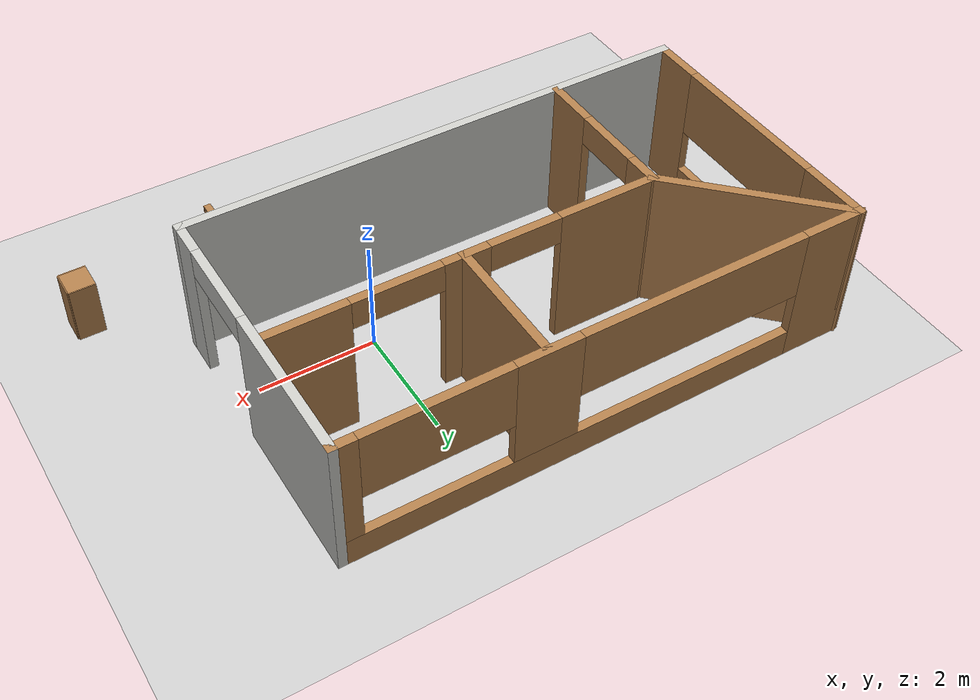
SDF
<sdf version="1.6">
 <world name="default">
  <light name="sun" type="directional">
   <pose>0 0 10 0 -0 0</pose>
   <diffuse>0.8 0.8 0.8 1</diffuse>
   <specular>0.1 0.1 0.1 1</specular>
   <attenuation>
    <range>1000</range>
    <constant>0.9</constant>
    <linear>0.01</linear>
    <quadratic>0.001</quadratic>
   </attenuation>
   <direction>-0.5 0.5 -1</direction>
  </light>
  <model name="ground_plane">
   <static>1</static>
   <link name="link">
    <collision name="collision">
     <geometry><plane><normal>0 0 1</normal><size>100 100</size></plane></geometry>
     <surface><friction><ode><mu>100</mu><mu2>50</mu2></ode></friction></surface>
    </collision>
    <visual name="visual">
     <cast_shadows>0</cast_shadows>
     <geometry><plane><normal>0 0 1</normal><size>100 100</size></plane></geometry>
     <material>
      <script><uri>file://media/materials/scripts/gazebo.material</uri><name>Gazebo/Grey</name></script>
     </material>
    </visual>
   </link>
  </model>
  <gravity>0 0 -9.8</gravity>
  <magnetic_field>6e-06 2.3e-05 -4.2e-05</magnetic_field>
  <atmosphere type="adiabatic"/>
  <physics name="default_physics" default="0" type="ode">
   <max_step_size>0.001</max_step_size>
   <real_time_factor>1</real_time_factor>
   <real_time_update_rate>1000</real_time_update_rate>
  </physics>
  <scene><ambient>0.4 0.4 0.4 1</ambient><background>0.7 0.7 0.7 1</background><shadows>1</shadows></scene>
  <spherical_coordinates>
   <surface_model>EARTH_WGS84</surface_model>
   <latitude_deg>0</latitude_deg>
   <longitude_deg>0</longitude_deg>
   <elevation>0</elevation>
   <heading_deg>0</heading_deg>
  </spherical_coordinates>
  <model name="test_map_2">
   <pose>-2.04553 1.04135 0 0 -0 0</pose>
   <link name="Wall_0">
    <pose>0.015533 2.40947 0 0 -0 0</pose>
    <visual name="Wall_0_Visual_0">
     <pose>-3.94197 0 1.25 0 -0 0</pose>
     <geometry><box><size>1.11607 0.15 2.5</size></box></geometry>
     <material>
      <script><uri>file://media/materials/scripts/gazebo.material</uri><name>Gazebo/Wood</name></script>
      <ambient>1 1 1 1</ambient>
     </material>
    </visual>
    <collision name="Wall_0_Collision_0">
     <geometry><box><size>1.11607 0.15 2.5</size></box></geometry>
     <pose>-3.94197 0 1.25 0 -0 0</pose>
    </collision>
    <visual name="Wall_0_Visual_1">
     <pose>0.558034 0 0.25 0 -0 0</pose>
     <geometry><box><size>7.88393 0.15 0.5</size></box></geometry>
     <material>
      <script><uri>file://media/materials/scripts/gazebo.material</uri><name>Gazebo/Wood</name></script>
      <ambient>1 1 1 1</ambient>
     </material>
    </visual>
    <collision name="Wall_0_Collision_1">
     <geometry><box><size>7.88393 0.15 0.5</size></box></geometry>
     <pose>0.558034 0 0.25 0 -0 0</pose>
    </collision>
    <visual name="Wall_0_Visual_2">
     <pose>1.10874 0 1.5 0 -0 0</pose>
     <geometry><box><size>1.08893 0.15 2</size></box></geometry>
     <material>
      <script><uri>file://media/materials/scripts/gazebo.material</uri><name>Gazebo/Wood</name></script>
      <ambient>1 1 1 1</ambient>
     </material>
    </visual>
    <collision name="Wall_0_Collision_2">
     <geometry><box><size>1.08893 0.15 2</size></box></geometry>
     <pose>1.10874 0 1.5 0 -0 0</pose>
    </collision>
    <visual name="Wall_0_Visual_3">
     <pose>4.28115 0 1.5 0 -0 0</pose>
     <geometry><box><size>0.437708 0.15 2</size></box></geometry>
     <material>
      <script><uri>file://media/materials/scripts/gazebo.material</uri><name>Gazebo/Wood</name></script>
      <ambient>1 1 1 1</ambient>
     </material>
    </visual>
    <collision name="Wall_0_Collision_3">
     <geometry><box><size>0.437708 0.15 2</size></box></geometry>
     <pose>4.28115 0 1.5 0 -0 0</pose>
    </collision>
    <visual name="Wall_0_Visual_4">
     <pose>-1.40983 0 1.9 0 -0 0</pose>
     <geometry><box><size>3.94821 0.15 1.2</size></box></geometry>
     <material>
      <script><uri>file://media/materials/scripts/gazebo.material</uri><name>Gazebo/Wood</name></script>
      <ambient>1 1 1 1</ambient>
     </material>
    </visual>
    <collision name="Wall_0_Collision_4">
     <geometry><box><size>3.94821 0.15 1.2</size></box></geometry>
     <pose>-1.40983 0 1.9 0 -0 0</pose>
    </collision>
    <visual name="Wall_0_Visual_5">
     <pose>2.85775 0 1.9 0 -0 0</pose>
     <geometry><box><size>2.40909 0.15 1.2</size></box></geometry>
     <material>
      <script><uri>file://media/materials/scripts/gazebo.material</uri><name>Gazebo/Wood</name></script>
      <ambient>1 1 1 1</ambient>
     </material>
    </visual>
    <collision name="Wall_0_Collision_5">
     <geometry><box><size>2.40909 0.15 1.2</size></box></geometry>
     <pose>2.85775 0 1.9 0 -0 0</pose>
    </collision>
   </link>
   <link name="Wall_1">
    <pose>4.44053 -0.015533 0 0 0 -1.5708</pose>
    <visual name="Wall_1_Visual_0">
     <pose>-1.11606 0 1.25 0 -0 0</pose>
     <geometry><box><size>2.76789 0.15 2.5</size></box></geometry>
     <material>
      <script><uri>file://media/materials/scripts/gazebo.material</uri><name>Gazebo/CeilingTiled</name></script>
      <ambient>1 1 1 1</ambient>
     </material>
    </visual>
    <collision name="Wall_1_Collision_0">
     <geometry><box><size>2.76789 0.15 2.5</size></box></geometry>
     <pose>-1.11606 0 1.25 0 -0 0</pose>
    </collision>
    <visual name="Wall_1_Visual_1">
     <pose>2.16626 0 1.25 0 -0 0</pose>
     <geometry><box><size>0.667491 0.15 2.5</size></box></geometry>
     <material>
      <script><uri>file://media/materials/scripts/gazebo.material</uri><name>Gazebo/CeilingTiled</name></script>
      <ambient>1 1 1 1</ambient>
     </material>
    </visual>
    <collision name="Wall_1_Collision_1">
     <geometry><box><size>0.667491 0.15 2.5</size></box></geometry>
     <pose>2.16626 0 1.25 0 -0 0</pose>
    </collision>
    <visual name="Wall_1_Visual_2">
     <pose>1.0502 0 2.25 0 -0 0</pose>
     <geometry><box><size>1.56462 0.15 0.5</size></box></geometry>
     <material>
      <script><uri>file://media/materials/scripts/gazebo.material</uri><name>Gazebo/CeilingTiled</name></script>
      <ambient>1 1 1 1</ambient>
     </material>
    </visual>
    <collision name="Wall_1_Collision_2">
     <geometry><box><size>1.56462 0.15 0.5</size></box></geometry>
     <pose>1.0502 0 2.25 0 -0 0</pose>
    </collision>
   </link>
   <link name="Wall_2">
    <collision name="Wall_2_Collision">
     <geometry><box><size>9 0.15 2.5</size></box></geometry>
     <pose>0 0 1.25 0 -0 0</pose>
    </collision>
    <visual name="Wall_2_Visual">
     <pose>0 0 1.25 0 -0 0</pose>
     <geometry><box><size>9 0.15 2.5</size></box></geometry>
     <material>
      <script><uri>file://media/materials/scripts/gazebo.material</uri><name>Gazebo/CeilingTiled</name></script>
      <ambient>1 1 1 1</ambient>
     </material>
    </visual>
    <pose>0.015533 -2.44053 0 0 -0 3.14159</pose>
   </link>
   <link name="Wall_3">
    <pose>-4.40947 -0.015533 0 0 -0 1.5708</pose>
    <visual name="Wall_3_Visual_0">
     <pose>-2.03194 0 1.25 0 -0 0</pose>
     <geometry><box><size>0.936117 0.15 2.5</size></box></geometry>
     <material>
      <script><uri>file://media/materials/scripts/gazebo.material</uri><name>Gazebo/Wood</name></script>
      <ambient>1 1 1 1</ambient>
     </material>
    </visual>
    <collision name="Wall_3_Collision_0">
     <geometry><box><size>0.936117 0.15 2.5</size></box></geometry>
     <pose>-2.03194 0 1.25 0 -0 0</pose>
    </collision>
    <visual name="Wall_3_Visual_1">
     <pose>0.468058 0 0.25 0 -0 0</pose>
     <geometry><box><size>4.06388 0.15 0.5</size></box></geometry>
     <material>
      <script><uri>file://media/materials/scripts/gazebo.material</uri><name>Gazebo/Wood</name></script>
      <ambient>1 1 1 1</ambient>
     </material>
    </visual>
    <collision name="Wall_3_Collision_1">
     <geometry><box><size>4.06388 0.15 0.5</size></box></geometry>
     <pose>0.468058 0 0.25 0 -0 0</pose>
    </collision>
    <visual name="Wall_3_Visual_2">
     <pose>1.89123 0 1.5 0 -0 0</pose>
     <geometry><box><size>1.21755 0.15 2</size></box></geometry>
     <material>
      <script><uri>file://media/materials/scripts/gazebo.material</uri><name>Gazebo/Wood</name></script>
      <ambient>1 1 1 1</ambient>
     </material>
    </visual>
    <collision name="Wall_3_Collision_2">
     <geometry><box><size>1.21755 0.15 2</size></box></geometry>
     <pose>1.89123 0 1.5 0 -0 0</pose>
    </collision>
    <visual name="Wall_3_Visual_3">
     <pose>-0.140715 0 1.9 0 -0 0</pose>
     <geometry><box><size>2.84634 0.15 1.2</size></box></geometry>
     <material>
      <script><uri>file://media/materials/scripts/gazebo.material</uri><name>Gazebo/Wood</name></script>
      <ambient>1 1 1 1</ambient>
     </material>
    </visual>
    <collision name="Wall_3_Collision_3">
     <geometry><box><size>2.84634 0.15 1.2</size></box></geometry>
     <pose>-0.140715 0 1.9 0 -0 0</pose>
    </collision>
   </link>
   <link name="Wall_4">
    <collision name="Wall_4_Collision">
     <geometry><box><size>3.25 0.15 2.5</size></box></geometry>
     <pose>0 0 1.25 0 -0 0</pose>
    </collision>
    <visual name="Wall_4_Visual">
     <pose>0 0 1.25 0 -0 0</pose>
     <geometry><box><size>3.25 0.15 2.5</size></box></geometry>
     <material>
      <script><uri>file://media/materials/scripts/gazebo.material</uri><name>Gazebo/Wood</name></script>
      <ambient>1 1 1 1</ambient>
     </material>
    </visual>
    <pose>-3.31345 1.31345 0 0 0 -0.785398</pose>
   </link>
   <link name="Wall_5">
    <pose>1.08256 0.217436 0 0 -0 0</pose>
    <visual name="Wall_5_Visual_0">
     <pose>-2.48193 0 1.25 0 -0 0</pose>
     <geometry><box><size>1.78613 0.15 2.5</size></box></geometry>
     <material>
      <script><uri>file://media/materials/scripts/gazebo.material</uri><name>Gazebo/Wood</name></script>
      <ambient>1 1 1 1</ambient>
     </material>
    </visual>
    <collision name="Wall_5_Collision_0">
     <geometry><box><size>1.78613 0.15 2.5</size></box></geometry>
     <pose>-2.48193 0 1.25 0 -0 0</pose>
    </collision>
    <visual name="Wall_5_Visual_1">
     <pose>0.032967 0 1.25 0 -0 0</pose>
     <geometry><box><size>0.779046 0.15 2.5</size></box></geometry>
     <material>
      <script><uri>file://media/materials/scripts/gazebo.material</uri><name>Gazebo/Wood</name></script>
      <ambient>1 1 1 1</ambient>
     </material>
    </visual>
    <collision name="Wall_5_Collision_1">
     <geometry><box><size>0.779046 0.15 2.5</size></box></geometry>
     <pose>0.032967 0 1.25 0 -0 0</pose>
    </collision>
    <visual name="Wall_5_Visual_2">
     <pose>2.65482 0 1.25 0 -0 0</pose>
     <geometry><box><size>1.44036 0.15 2.5</size></box></geometry>
     <material>
      <script><uri>file://media/materials/scripts/gazebo.material</uri><name>Gazebo/Wood</name></script>
      <ambient>1 1 1 1</ambient>
     </material>
    </visual>
    <collision name="Wall_5_Collision_2">
     <geometry><box><size>1.44036 0.15 2.5</size></box></geometry>
     <pose>2.65482 0 1.25 0 -0 0</pose>
    </collision>
    <visual name="Wall_5_Visual_3">
     <pose>-0.972712 0 2.25 0 -0 0</pose>
     <geometry><box><size>1.23231 0.15 0.5</size></box></geometry>
     <material>
      <script><uri>file://media/materials/scripts/gazebo.material</uri><name>Gazebo/Wood</name></script>
      <ambient>1 1 1 1</ambient>
     </material>
    </visual>
    <collision name="Wall_5_Collision_3">
     <geometry><box><size>1.23231 0.15 0.5</size></box></geometry>
     <pose>-0.972712 0 2.25 0 -0 0</pose>
    </collision>
    <visual name="Wall_5_Visual_4">
     <pose>1.17857 0 2.25 0 -0 0</pose>
     <geometry><box><size>1.51215 0.15 0.5</size></box></geometry>
     <material>
      <script><uri>file://media/materials/scripts/gazebo.material</uri><name>Gazebo/Wood</name></script>
      <ambient>1 1 1 1</ambient>
     </material>
    </visual>
    <collision name="Wall_5_Collision_4">
     <geometry><box><size>1.51215 0.15 0.5</size></box></geometry>
     <pose>1.17857 0 2.25 0 -0 0</pose>
    </collision>
   </link>
   <link name="Wall_7">
    <pose>-2.21744 -1.08256 0 0 0 -1.5708</pose>
    <visual name="Wall_7_Visual_0">
     <pose>-1.06084 0 1.25 0 -0 0</pose>
     <geometry><box><size>0.628326 0.15 2.5</size></box></geometry>
     <material>
      <script><uri>file://media/materials/scripts/gazebo.material</uri><name>Gazebo/Wood</name></script>
      <ambient>1 1 1 1</ambient>
     </material>
    </visual>
    <collision name="Wall_7_Collision_0">
     <geometry><box><size>0.628326 0.15 2.5</size></box></geometry>
     <pose>-1.06084 0 1.25 0 -0 0</pose>
    </collision>
    <visual name="Wall_7_Visual_1">
     <pose>0.904083 0 1.25 0 -0 0</pose>
     <geometry><box><size>0.941833 0.15 2.5</size></box></geometry>
     <material>
      <script><uri>file://media/materials/scripts/gazebo.material</uri><name>Gazebo/Wood</name></script>
      <ambient>1 1 1 1</ambient>
     </material>
    </visual>
    <collision name="Wall_7_Collision_1">
     <geometry><box><size>0.941833 0.15 2.5</size></box></geometry>
     <pose>0.904083 0 1.25 0 -0 0</pose>
    </collision>
    <visual name="Wall_7_Visual_2">
     <pose>-0.156754 0 2.25 0 -0 0</pose>
     <geometry><box><size>1.17984 0.15 0.5</size></box></geometry>
     <material>
      <script><uri>file://media/materials/scripts/gazebo.material</uri><name>Gazebo/Wood</name></script>
      <ambient>1 1 1 1</ambient>
     </material>
    </visual>
    <collision name="Wall_7_Collision_2">
     <geometry><box><size>1.17984 0.15 0.5</size></box></geometry>
     <pose>-0.156754 0 2.25 0 -0 0</pose>
    </collision>
   </link>
   <link name="Wall_9">
    <collision name="Wall_9_Collision">
     <geometry><box><size>2.25 0.15 2.5</size></box></geometry>
     <pose>0 0 1.25 0 -0 0</pose>
    </collision>
    <visual name="Wall_9_Visual">
     <pose>0 0 1.25 0 -0 0</pose>
     <geometry><box><size>2.25 0.15 2.5</size></box></geometry>
     <material>
      <script><uri>file://media/materials/scripts/gazebo.material</uri><name>Gazebo/Wood</name></script>
      <ambient>1 1 1 1</ambient>
     </material>
    </visual>
    <pose>1.14177 1.26979 0 0 -0 1.5708</pose>
   </link>
   <static>1</static>
  </model>
  <model name="cabinet">
   <static>1</static>
   <link name="cabinet_bottom_plate">
    <inertial>
     <pose>0 0 -1 0 -0 0</pose>
     <inertia><ixx>2.05</ixx><ixy>0</ixy><ixz>0</ixz><iyy>2.05</iyy><iyz>0</iyz><izz>2.05</izz></inertia>
     <mass>25</mass>
    </inertial>
    <collision name="cabinet_bottom_plate_geom">
     <pose>0 0 0.01 0 -0 0</pose>
     <geometry><box><size>0.45 0.45 0.02</size></box></geometry>
    </collision>
    <visual name="cabinet_bottom_plate_geom_visual">
     <pose>0 0 0.01 0 -0 0</pose>
     <geometry><box><size>0.45 0.45 0.02</size></box></geometry>
     <material>
      <script><uri>file://media/materials/scripts/gazebo.material</uri><name>Gazebo/Wood</name></script>
     </material>
    </visual>
    <collision name="cabinet_bottom_plate_geom_cabinet_back_plate">
     <pose>0.235 0 0.51 0 -0 0</pose>
     <geometry><box><size>0.02 0.45 1.02</size></box></geometry>
    </collision>
    <visual name="cabinet_bottom_plate_geom_cabinet_back_plate_visual">
     <pose>0.235 0 0.51 0 -0 0</pose>
     <geometry><box><size>0.02 0.45 1.02</size></box></geometry>
     <material>
      <script><uri>file://media/materials/scripts/gazebo.material</uri><name>Gazebo/Wood</name></script>
     </material>
    </visual>
    <collision name="cabinet_bottom_plate_geom_cabinet_left_plate">
     <pose>0 0.235 0.51 0 -0 0</pose>
     <geometry><box><size>0.45 0.02 1.02</size></box></geometry>
    </collision>
    <visual name="cabinet_bottom_plate_geom_cabinet_left_plate_visual">
     <pose>0 0.235 0.51 0 -0 0</pose>
     <geometry><box><size>0.45 0.02 1.02</size></box></geometry>
     <material>
      <script><uri>file://media/materials/scripts/gazebo.material</uri><name>Gazebo/Wood</name></script>
     </material>
    </visual>
    <collision name="cabinet_bottom_plate_geom_cabinet_middle_plate">
     <pose>0 0 0.51 0 -0 0</pose>
     <geometry><box><size>0.45 0.45 0.02</size></box></geometry>
    </collision>
    <visual name="cabinet_bottom_plate_geom_cabinet_middle_plate_visual">
     <pose>0 0 0.51 0 -0 0</pose>
     <geometry><box><size>0.45 0.45 0.02</size></box></geometry>
     <material>
      <script><uri>file://media/materials/scripts/gazebo.material</uri><name>Gazebo/Wood</name></script>
     </material>
    </visual>
    <collision name="cabinet_bottom_plate_geom_cabinet_right_plate">
     <pose>0 -0.235 0.51 0 -0 0</pose>
     <geometry><box><size>0.45 0.02 1.02</size></box></geometry>
    </collision>
    <visual name="cabinet_bottom_plate_geom_cabinet_right_plate_visual">
     <pose>0 -0.235 0.51 0 -0 0</pose>
     <geometry><box><size>0.45 0.02 1.02</size></box></geometry>
     <material>
      <script><uri>file://media/materials/scripts/gazebo.material</uri><name>Gazebo/Wood</name></script>
     </material>
    </visual>
    <collision name="cabinet_bottom_plate_geom_cabinet_top_plate">
     <pose>0 0 1.01 0 -0 0</pose>
     <geometry><box><size>0.45 0.45 0.02</size></box></geometry>
    </collision>
    <visual name="cabinet_bottom_plate_geom_cabinet_top_plate_visual">
     <pose>0 0 1.01 0 -0 0</pose>
     <geometry><box><size>0.45 0.45 0.02</size></box></geometry>
     <material>
      <script><uri>file://media/materials/scripts/gazebo.material</uri><name>Gazebo/Wood</name></script>
     </material>
    </visual>
   </link>
   <pose>3.77157 -2.68873 0 0 -0 0</pose>
  </model>
  <model name="wooden_case">
   <link name="base">
    <pose>0 0 0.024 0 -0 0</pose>
    <inertial>
     <pose>-0.022184 0 0.171592 0 -0 0</pose>
     <mass>3.96264</mass>
     <inertia>
      <ixx>0.213536</ixx>
      <ixy>0</ixy>
      <ixz>0.000779377</ixz>
      <iyy>0.0708943</iyy>
      <iyz>0</iyz>
      <izz>0.154604</izz>
     </inertia>
    </inertial>
    <collision name="collision_back">
     <pose>-0.053975 0 0.1778 0 -0 0</pose>
     <geometry><box><size>0.01905 0.5461 0.3175</size></box></geometry>
     <surface>
      <contact>
       <poissons_ratio>0.347</poissons_ratio>
       <elastic_modulus>8.8e+09</elastic_modulus>
       <ode><kp>100000</kp><kd>100</kd><max_vel>100</max_vel><min_depth>0.001</min_depth></ode>
      </contact>
      <friction>
       <torsional>
        <coefficient>1</coefficient>
        <use_patch_radius>0</use_patch_radius>
        <surface_radius>0.01</surface_radius>
       </torsional>
      </friction>
     </surface>
    </collision>
    <visual name="visual_back">
     <pose>-0.053975 0 0.1778 0 -0 0</pose>
     <geometry><box><size>0.01905 0.5461 0.3175</size></box></geometry>
     <material>
      <script><uri>file://media/materials/scripts/gazebo.material</uri><name>Gazebo/Wood</name></script>
     </material>
    </visual>
    <collision name="collision_bottom">
     <pose>0 0 0.009525 0 -0 0</pose>
     <geometry><box><size>0.127 0.5842 0.01905</size></box></geometry>
     <surface>
      <contact>
       <poissons_ratio>0.347</poissons_ratio>
       <elastic_modulus>8.8e+09</elastic_modulus>
       <ode><kp>100000</kp><kd>100</kd><max_vel>100</max_vel><min_depth>0.001</min_depth></ode>
      </contact>
      <friction>
       <torsional>
        <coefficient>1</coefficient>
        <use_patch_radius>0</use_patch_radius>
        <surface_radius>0.01</surface_radius>
       </torsional>
      </friction>
     </surface>
    </collision>
    <visual name="visual_bottom">
     <pose>0 0 0.009525 0 -0 0</pose>
     <geometry><box><size>0.127 0.5842 0.01905</size></box></geometry>
     <material>
      <script><uri>file://media/materials/scripts/gazebo.material</uri><name>Gazebo/Wood</name></script>
     </material>
    </visual>
    <collision name="collision_top">
     <pose>0 0 0.346075 0 -0 0</pose>
     <geometry><box><size>0.127 0.5842 0.01905</size></box></geometry>
     <surface>
      <contact>
       <poissons_ratio>0.347</poissons_ratio>
       <elastic_modulus>8.8e+09</elastic_modulus>
       <ode><kp>100000</kp><kd>100</kd><max_vel>100</max_vel><min_depth>0.001</min_depth></ode>
      </contact>
      <friction>
       <torsional>
        <coefficient>1</coefficient>
        <use_patch_radius>0</use_patch_radius>
        <surface_radius>0.01</surface_radius>
       </torsional>
      </friction>
     </surface>
    </collision>
    <visual name="visual_top">
     <pose>0 0 0.346075 0 -0 0</pose>
     <geometry><box><size>0.127 0.5842 0.01905</size></box></geometry>
     <material>
      <script><uri>file://media/materials/scripts/gazebo.material</uri><name>Gazebo/Wood</name></script>
     </material>
    </visual>
    <collision name="collision_left">
     <pose>0 -0.282575 0.1778 0 -0 0</pose>
     <geometry><box><size>0.127 0.01905 0.3175</size></box></geometry>
     <surface>
      <contact>
       <poissons_ratio>0.347</poissons_ratio>
       <elastic_modulus>8.8e+09</elastic_modulus>
       <ode><kp>100000</kp><kd>100</kd><max_vel>100</max_vel><min_depth>0.001</min_depth></ode>
      </contact>
      <friction>
       <torsional>
        <coefficient>1</coefficient>
        <use_patch_radius>0</use_patch_radius>
        <surface_radius>0.01</surface_radius>
       </torsional>
      </friction>
     </surface>
    </collision>
    <visual name="visual_left">
     <pose>0 -0.282575 0.1778 0 -0 0</pose>
     <geometry><box><size>0.127 0.01905 0.3175</size></box></geometry>
     <material>
      <script><uri>file://media/materials/scripts/gazebo.material</uri><name>Gazebo/Wood</name></script>
     </material>
    </visual>
    <collision name="collision_right">
     <pose>0 0.282575 0.1778 0 -0 0</pose>
     <geometry><box><size>0.127 0.01905 0.3175</size></box></geometry>
     <surface>
      <contact>
       <poissons_ratio>0.347</poissons_ratio>
       <elastic_modulus>8.8e+09</elastic_modulus>
       <ode><kp>100000</kp><kd>100</kd><max_vel>100</max_vel><min_depth>0.001</min_depth></ode>
      </contact>
      <friction>
       <torsional>
        <coefficient>1</coefficient>
        <use_patch_radius>0</use_patch_radius>
        <surface_radius>0.01</surface_radius>
       </torsional>
      </friction>
     </surface>
    </collision>
    <visual name="visual_right">
     <pose>0 0.282575 0.1778 0 -0 0</pose>
     <geometry><box><size>0.127 0.01905 0.3175</size></box></geometry>
     <material>
      <script><uri>file://media/materials/scripts/gazebo.material</uri><name>Gazebo/Wood</name></script>
     </material>
    </visual>
    <collision name="collision_block_left">
     <pose>0.0095 -0.2151 -0.012 0 -0 0</pose>
     <geometry><box><size>0.108 0.05 0.024</size></box></geometry>
     <surface>
      <contact>
       <poissons_ratio>0.347</poissons_ratio>
       <elastic_modulus>8.8e+09</elastic_modulus>
       <ode><kp>100000</kp><kd>100</kd><max_vel>100</max_vel><min_depth>0.001</min_depth></ode>
      </contact>
      <friction>
       <torsional>
        <coefficient>1</coefficient>
        <use_patch_radius>0</use_patch_radius>
        <surface_radius>0.01</surface_radius>
       </torsional>
      </friction>
     </surface>
    </collision>
    <visual name="visual_block_left">
     <pose>0.0095 -0.2151 -0.012 0 -0 0</pose>
     <geometry><box><size>0.108 0.05 0.024</size></box></geometry>
     <material>
      <script><uri>file://media/materials/scripts/gazebo.material</uri><name>Gazebo/Wood</name></script>
     </material>
    </visual>
    <collision name="collision_block_right">
     <pose>0.0095 0.2151 -0.012 0 -0 0</pose>
     <geometry><box><size>0.108 0.05 0.024</size></box></geometry>
     <surface>
      <contact>
       <poissons_ratio>0.347</poissons_ratio>
       <elastic_modulus>8.8e+09</elastic_modulus>
       <ode><kp>100000</kp><kd>100</kd><max_vel>100</max_vel><min_depth>0.001</min_depth></ode>
      </contact>
      <friction>
       <torsional>
        <coefficient>1</coefficient>
        <use_patch_radius>0</use_patch_radius>
        <surface_radius>0.01</surface_radius>
       </torsional>
      </friction>
     </surface>
    </collision>
    <visual name="visual_block_right">
     <pose>0.0095 0.2151 -0.012 0 -0 0</pose>
     <geometry><box><size>0.108 0.05 0.024</size></box></geometry>
     <material>
      <script><uri>file://media/materials/scripts/gazebo.material</uri><name>Gazebo/Wood</name></script>
     </material>
    </visual>
   </link>
   <link name="lid">
    <pose>0.243775 0 0.009525 0 -0 0</pose>
    <inertial>
     <mass>1.97874</mass>
     <inertia>
      <ixx>0.0563367</ixx>
      <ixy>0</ixy>
      <ixz>0</ixz>
      <iyy>0.020911</iyy>
      <iyz>0</iyz>
      <izz>0.0771281</izz>
     </inertia>
    </inertial>
    <collision name="collision">
     <geometry><box><size>0.3556 0.5842 0.01905</size></box></geometry>
     <surface>
      <contact>
       <poissons_ratio>0.347</poissons_ratio>
       <elastic_modulus>8.8e+09</elastic_modulus>
       <ode><kp>100000</kp><kd>100</kd><max_vel>100</max_vel><min_depth>0.001</min_depth></ode>
      </contact>
      <friction>
       <torsional>
        <coefficient>1</coefficient>
        <use_patch_radius>0</use_patch_radius>
        <surface_radius>0.01</surface_radius>
       </torsional>
      </friction>
     </surface>
    </collision>
    <visual name="visual">
     <geometry><box><size>0.3556 0.5842 0.01905</size></box></geometry>
     <material>
      <script><uri>file://media/materials/scripts/gazebo.material</uri><name>Gazebo/Wood</name></script>
     </material>
    </visual>
    <visual name="tee_nut_1">
     <pose>0.122 -0.216 0 0 -0 0</pose>
     <geometry><cylinder><radius>0.00635</radius><length>0.0192405</length></cylinder></geometry>
     <material>
      <script><uri>file://media/materials/scripts/gazebo.material</uri><name>Gazebo/Grey</name></script>
     </material>
    </visual>
    <visual name="tee_nut_2">
     <pose>0.122 -0.088 0 0 -0 0</pose>
     <geometry><cylinder><radius>0.00635</radius><length>0.0192405</length></cylinder></geometry>
     <material>
      <script><uri>file://media/materials/scripts/gazebo.material</uri><name>Gazebo/Grey</name></script>
     </material>
    </visual>
    <visual name="tee_nut_3">
     <pose>0.122 0.088 0 0 -0 0</pose>
     <geometry><cylinder><radius>0.00635</radius><length>0.0192405</length></cylinder></geometry>
     <material>
      <script><uri>file://media/materials/scripts/gazebo.material</uri><name>Gazebo/Grey</name></script>
     </material>
    </visual>
    <visual name="tee_nut_4">
     <pose>0.122 0.216 0 0 -0 0</pose>
     <geometry><cylinder><radius>0.00635</radius><length>0.0192405</length></cylinder></geometry>
     <material>
      <script><uri>file://media/materials/scripts/gazebo.material</uri><name>Gazebo/Grey</name></script>
     </material>
    </visual>
   </link>
   <joint name="lid_hinge" type="revolute">
    <pose>-0.1778 0 0.01905 0 -0 0</pose>
    <parent>base</parent>
    <child>lid</child>
    <axis>
     <xyz>0 1 0</xyz>
     <limit><upper>0.523599</upper><lower>-1.5708</lower></limit>
     <use_parent_model_frame>0</use_parent_model_frame>
     <dynamics><spring_reference>0</spring_reference><spring_stiffness>0</spring_stiffness></dynamics>
    </axis>
   </joint>
   <pose>1.07135 -3.72239 -0.001057 0 -0.000429 0</pose>
  </model>
 </world>
</sdf>
